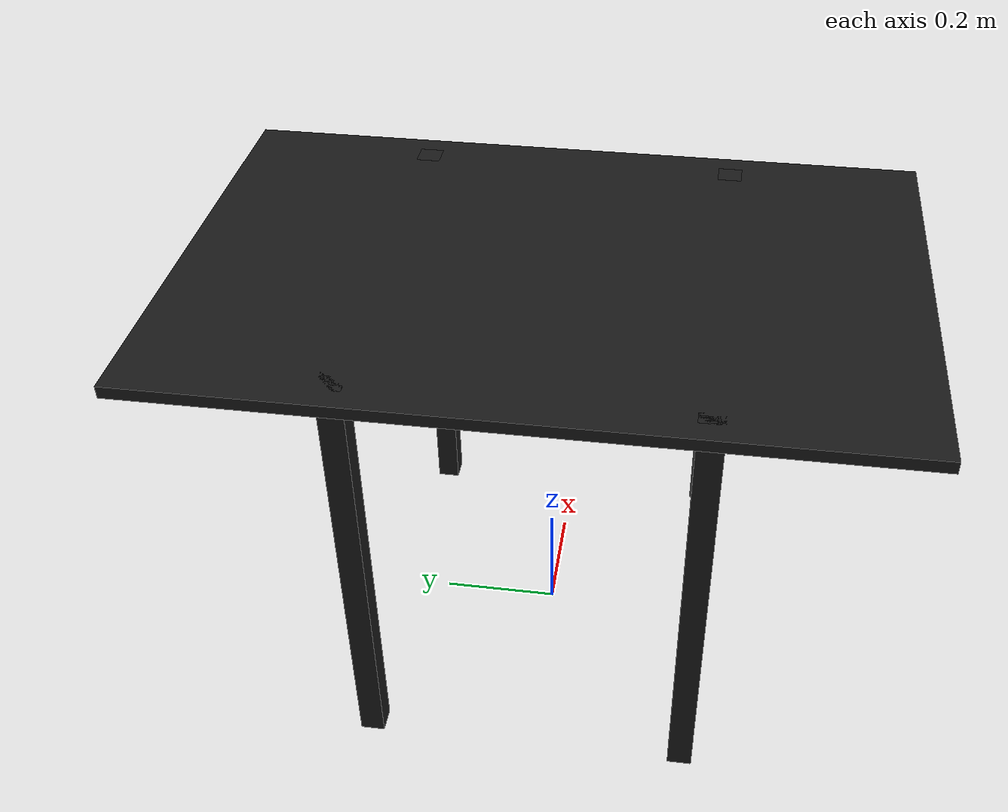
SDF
<?xml version="1.0"?>
<sdf version="1.6">
  <model name="rgo2015/kitchen_table">
    <link name="1_link">
      <collision name="1_col">
        <geometry>
          <box>
            <size>0.78 1.17 0.02</size>
          </box>
        </geometry>
      </collision>
      <visual name="1_vis">
        <geometry>
          <box>
            <size>0.78 1.17 0.02</size>
          </box>
        </geometry>
        <material>
          <ambient>0.1 0.1 0.1 1</ambient>
        </material>
      </visual>
      <pose>0.0 0.0 0.73 0 0 0</pose>
    </link>
    <link name="2_link">
      <collision name="2_col">
        <geometry>
          <box>
            <size>0.04 0.04 0.74</size>
          </box>
        </geometry>
      </collision>
      <visual name="2_vis">
        <geometry>
          <box>
            <size>0.04 0.04 0.74</size>
          </box>
        </geometry>
        <material>
          <ambient>0.1 0.1 0.1 1</ambient>
        </material>
      </visual>
      <pose>-0.335 -0.265 0.37 0 0 0</pose>
    </link>
    <link name="3_link">
      <collision name="3_col">
        <geometry>
          <box>
            <size>0.04 0.04 0.74</size>
          </box>
        </geometry>
      </collision>
      <visual name="3_vis">
        <geometry>
          <box>
            <size>0.04 0.04 0.74</size>
          </box>
        </geometry>
        <material>
          <ambient>0.1 0.1 0.1 1</ambient>
        </material>
      </visual>
      <pose>-0.335 0.265 0.37 0 0 0</pose>
    </link>
    <link name="4_link">
      <collision name="4_col">
        <geometry>
          <box>
            <size>0.04 0.04 0.74</size>
          </box>
        </geometry>
      </collision>
      <visual name="4_vis">
        <geometry>
          <box>
            <size>0.04 0.04 0.74</size>
          </box>
        </geometry>
        <material>
          <ambient>0.1 0.1 0.1 1</ambient>
        </material>
      </visual>
      <pose>0.335 -0.265 0.37 0 0 0</pose>
    </link>
    <link name="5_link">
      <collision name="5_col">
        <geometry>
          <box>
            <size>0.04 0.04 0.74</size>
          </box>
        </geometry>
      </collision>
      <visual name="5_vis">
        <geometry>
          <box>
            <size>0.04 0.04 0.74</size>
          </box>
        </geometry>
        <material>
          <ambient>0.1 0.1 0.1 1</ambient>
        </material>
      </visual>
      <pose>0.335 0.265 0.37 0 0 0</pose>
    </link>
    <link name="in_front_of">
      <virtual_volume name="in_front_of_vv">
        <geometry>
          <box>
            <size>0.15 1.0 1</size>
          </box>
        </geometry>
        <pose>1.165 0.0 0.5 0 0 0</pose>
      </virtual_volume>
    </link>
    <static>true</static>
  </model>
</sdf>
